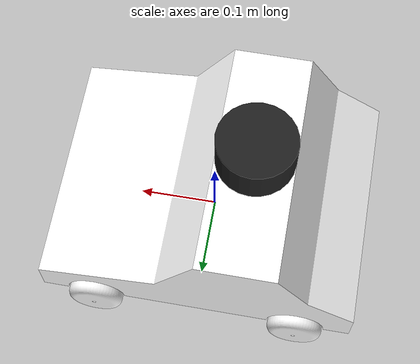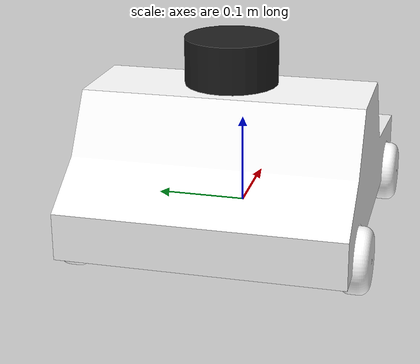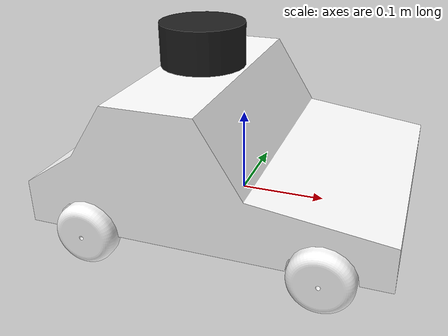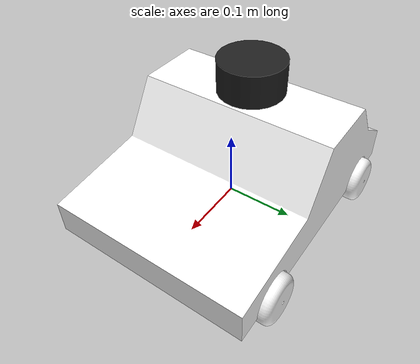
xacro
<?xml version="1.0" encoding="utf-8"?>
<robot
  name="little_car_urdf">
  <link
    name="base_link">
    <inertial>
      <origin
        xyz="-0.0214296564968354 0 0.0568815827004748"
        rpy="0 0 0" />
      <mass
        value="11.4693081230504" />
      <inertia
        ixx="0.102397555270709"
        ixy="-4.26772392736101E-18"
        ixz="0.00961016950477449"
        iyy="0.127224060887284"
        iyz="2.43267071072973E-18"
        izz="0.193556630818574" />
    </inertial>
    <visual>
      <origin
        xyz="0 0 0"
        rpy="0 0 0" />
      <geometry>
        <mesh
          filename="package://little_car_urdf/meshes/base_link.STL" />
      </geometry>
      <material
        name="">
        <color
          rgba="1 1 1 1" />
      </material>
    </visual>
    <collision>
      <origin
        xyz="0 0 0"
        rpy="0 0 0" />
      <geometry>
        <mesh
          filename="package://little_car_urdf/meshes/base_link.STL" />
      </geometry>
    </collision>
  </link>
  <link
    name="fl">
    <inertial>
      <origin
        xyz="0 -1.3878E-17 0.015"
        rpy="0 0 0" />
      <mass
        value="0.10603" />
      <inertia
        ixx="3.7725E-05"
        ixy="1.406E-41"
        ixz="-4.5918E-38"
        iyy="3.7725E-05"
        iyz="-4.3114E-38"
        izz="6.1135E-05" />
    </inertial>
    <visual>
      <origin
        xyz="0 0 0"
        rpy="0 0 0" />
      <geometry>
        <mesh
          filename="package://little_car_urdf/meshes/fl.STL" />
      </geometry>
      <material
        name="">
        <color
          rgba="1 1 1 1" />
      </material>
    </visual>
    <collision>
      <origin
        xyz="0 0 0"
        rpy="0 0 0" />
      <geometry>
        <mesh
          filename="package://little_car_urdf/meshes/fl.STL" />
      </geometry>
    </collision>
  </link>
  <joint
    name="fl"
    type="continuous">
    <origin
      xyz="0.13 0.165 0"
      rpy="-1.5708 0 3.1416" />
    <parent
      link="base_link" />
    <child
      link="fl" />
    <axis
      xyz="0 0 -1" />
    <limit
      lower="-6"
      upper="6"
      effort="6"
      velocity="6" />
  </joint>
  <link
    name="fr">
    <inertial>
      <origin
        xyz="0 -1.3878E-17 -0.015"
        rpy="0 0 0" />
      <mass
        value="0.10603" />
      <inertia
        ixx="3.7725E-05"
        ixy="1.406E-41"
        ixz="-4.5918E-38"
        iyy="3.7725E-05"
        iyz="-4.3114E-38"
        izz="6.1135E-05" />
    </inertial>
    <visual>
      <origin
        xyz="0 0 0"
        rpy="0 0 0" />
      <geometry>
        <mesh
          filename="package://little_car_urdf/meshes/fr.STL" />
      </geometry>
      <material
        name="">
        <color
          rgba="1 1 1 1" />
      </material>
    </visual>
    <collision>
      <origin
        xyz="0 0 0"
        rpy="0 0 0" />
      <geometry>
        <mesh
          filename="package://little_car_urdf/meshes/fr.STL" />
      </geometry>
    </collision>
  </link>
  <joint
    name="fr"
    type="continuous">
    <origin
      xyz="0.13 -0.165 0"
      rpy="-1.5708 0 3.1416" />
    <parent
      link="base_link" />
    <child
      link="fr" />
    <axis
      xyz="0 0 -1" />
    <limit
      lower="-6"
      upper="6"
      effort="6"
      velocity="6" />
  </joint>
  <link
    name="bl">
    <inertial>
      <origin
        xyz="-1.3878E-17 -1.3878E-17 0.015"
        rpy="0 0 0" />
      <mass
        value="0.10603" />
      <inertia
        ixx="3.7725E-05"
        ixy="1.406E-41"
        ixz="-4.5918E-38"
        iyy="3.7725E-05"
        iyz="-4.3114E-38"
        izz="6.1135E-05" />
    </inertial>
    <visual>
      <origin
        xyz="0 0 0"
        rpy="0 0 0" />
      <geometry>
        <mesh
          filename="package://little_car_urdf/meshes/bl.STL" />
      </geometry>
      <material
        name="">
        <color
          rgba="1 1 1 1" />
      </material>
    </visual>
    <collision>
      <origin
        xyz="0 0 0"
        rpy="0 0 0" />
      <geometry>
        <mesh
          filename="package://little_car_urdf/meshes/bl.STL" />
      </geometry>
    </collision>
  </link>
  <joint
    name="bl"
    type="continuous">
    <origin
      xyz="-0.13 0.165 0"
      rpy="-1.5708 0 3.1416" />
    <parent
      link="base_link" />
    <child
      link="bl" />
    <axis
      xyz="0 0 -1" />
    <limit
      lower="-6"
      upper="6"
      effort="6"
      velocity="6" />
  </joint>
  <link
    name="br">
    <inertial>
      <origin
        xyz="0 -1.3878E-17 -0.015"
        rpy="0 0 0" />
      <mass
        value="0.10603" />
      <inertia
        ixx="3.7725E-05"
        ixy="6.7309E-23"
        ixz="-1.9521E-22"
        iyy="3.7725E-05"
        iyz="-4.0863E-22"
        izz="6.1135E-05" />
    </inertial>
    <visual>
      <origin
        xyz="0 0 0"
        rpy="0 0 0" />
      <geometry>
        <mesh
          filename="package://little_car_urdf/meshes/br.STL" />
      </geometry>
      <material
        name="">
        <color
          rgba="1 1 1 1" />
      </material>
    </visual>
    <collision>
      <origin
        xyz="0 0 0"
        rpy="0 0 0" />
      <geometry>
        <mesh
          filename="package://little_car_urdf/meshes/br.STL" />
      </geometry>
    </collision>
  </link>
  <joint
    name="br"
    type="continuous">
    <origin
      xyz="-0.13 -0.165 0"
      rpy="-1.5708 0 3.1416" />
    <parent
      link="base_link" />
    <child
      link="br" />
    <axis
      xyz="0 0 -1" />
    <limit
      lower="-6"
      upper="6"
      effort="6"
      velocity="6" />
  </joint>

  <!--add lidar-->

  <link name="laser_link">
        <inertial>
            <mass value="0.1" />
            <origin xyz="0 0 0" />
            <inertia ixx="0.01" ixy="0.0" ixz="0.0"
                        iyy="0.01" iyz="0.0"
                        izz="0.01" />
        </inertial>

        <visual>
            <origin xyz=" 0 0 0 " rpy="0 0 0" />
            <geometry>
                <cylinder length="0.05" radius="0.05"/>
            </geometry>
            <material name="black"/>
        </visual>

        <collision>
            <origin xyz="0.0 0.0 0.0" rpy="0 0 0" />
            <geometry>
                <cylinder length="0.05" radius="0.05"/>
            </geometry>
        </collision>
    </link>

	<joint name="rplidar_joint" type="fixed">
		<origin xyz="-0.05 0 0.18" rpy="0 0 0" />
		<parent link="base_link"/>
		<child link="laser_link"/>
	</joint>

    <gazebo reference="laser_link">
        <material>Gazebo/Grey</material>
    </gazebo>

    <gazebo reference="laser_link">
        <sensor type="ray" name="rplidar">
            <pose>0 0 0 0 0 0</pose>
            <visualize>false</visualize>
            <update_rate>40</update_rate>
            <ray>
                <scan>
                    <horizontal>
                    <samples>360</samples>
                    <resolution>1</resolution>
                    <min_angle>-3.14</min_angle>
                    <max_angle>3.14</max_angle>
                    </horizontal>
                </scan>
                <range>
                    <min>0.10</min>
                    <max>30.0</max>
                    <resolution>0.01</resolution>
                </range>
                <noise>
                    <type>gaussian</type>
                    <mean>0.0</mean>
                    <stddev>0.01</stddev>
                </noise>
            </ray>
            <plugin name="gazebo_rplidar" filename="libgazebo_ros_laser.so">
                <topicName>/scan</topicName>
                <frameName>laser_link</frameName>
            </plugin>
        </sensor>
    </gazebo>

    <gazebo>
      <plugin name="little_car_drive_controller" filename="libgazebo_ros_planar_move.so">
          <commandTopic>cmd_vel</commandTopic>
          <odometryTopic>odom</odometryTopic>
          <odometryFrame>odom</odometryFrame>
          <odometryRate>50</odometryRate>
          <robotBaseFrame>base_link</robotBaseFrame>
      </plugin>
    </gazebo>

    <!--color-->
    <gazebo reference="base_link">
        <material>Gazebo/Red</material>
    </gazebo>

    <gazebo reference="fl">
        <material>Gazebo/Black</material>
    </gazebo>

    <gazebo reference="fr">
        <material>Gazebo/Black</material>
    </gazebo>

    <gazebo reference="bl">
        <material>Gazebo/Black</material>
    </gazebo>

    <gazebo reference="br">
        <material>Gazebo/Black</material>
    </gazebo>

</robot>
